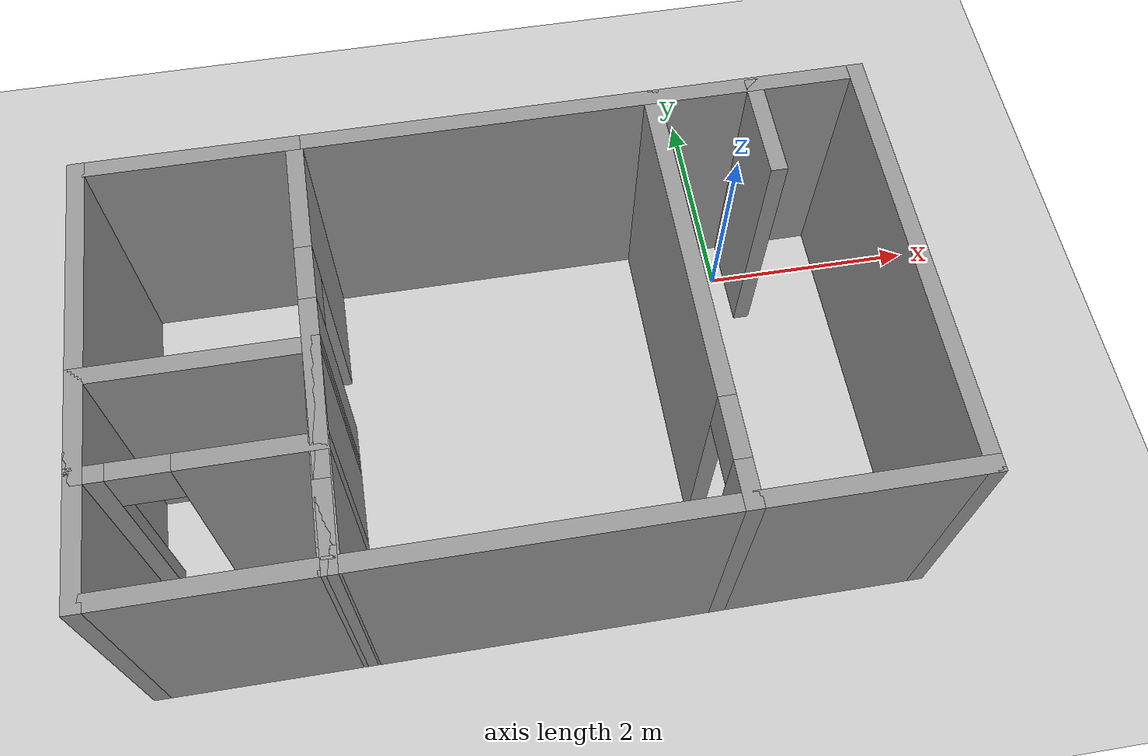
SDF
<sdf version="1.7">
 <world name="default">
  <light name="sun" type="directional">
   <pose>0 0 10 0 -0 0</pose>
   <diffuse>0.8 0.8 0.8 1</diffuse>
   <specular>0.2 0.2 0.2 1</specular>
   <attenuation>
    <range>1000</range>
    <constant>0.9</constant>
    <linear>0.01</linear>
    <quadratic>0.001</quadratic>
   </attenuation>
   <direction>-0.5 0.1 -0.9</direction>
   <spot><inner_angle>0</inner_angle><outer_angle>0</outer_angle><falloff>0</falloff></spot>
  </light>
  <model name="ground_plane">
   <static>1</static>
   <link name="link">
    <collision name="collision">
     <geometry><plane><normal>0 0 1</normal><size>100 100</size></plane></geometry>
     <surface><friction><ode><mu>100</mu><mu2>50</mu2></ode></friction></surface>
    </collision>
    <visual name="visual">
     <cast_shadows>0</cast_shadows>
     <geometry><plane><normal>0 0 1</normal><size>100 100</size></plane></geometry>
     <material>
      <script><uri>file://media/materials/scripts/gazebo.material</uri><name>Gazebo/Grey</name></script>
     </material>
    </visual>
   </link>
  </model>
  <gravity>0 0 -9.8</gravity>
  <magnetic_field>6e-06 2.3e-05 -4.2e-05</magnetic_field>
  <atmosphere type="adiabatic"/>
  <physics type="ode">
   <max_step_size>0.001</max_step_size>
   <real_time_factor>1</real_time_factor>
   <real_time_update_rate>1000</real_time_update_rate>
  </physics>
  <scene><ambient>0.4 0.4 0.4 1</ambient><background>0.7 0.7 0.7 1</background><shadows>1</shadows></scene>
  <spherical_coordinates>
   <surface_model>EARTH_WGS84</surface_model>
   <latitude_deg>0</latitude_deg>
   <longitude_deg>0</longitude_deg>
   <elevation>0</elevation>
   <heading_deg>0</heading_deg>
  </spherical_coordinates>
  <model name="Simulation_room">
   <pose>-2.29917 -1.44617 0 0 -0 0</pose>
   <link name="Wall_0">
    <collision name="Wall_0_Collision">
     <geometry><box><size>4 0.15 2.5</size></box></geometry>
     <pose>0 0 1.25 0 -0 0</pose>
    </collision>
    <visual name="Wall_0_Visual">
     <pose>0 0 1.25 0 -0 0</pose>
     <geometry><box><size>4 0.15 2.5</size></box></geometry>
     <material>
      <script><uri>file://media/materials/scripts/gazebo.material</uri><name>Gazebo/Grey</name></script>
      <ambient>1 1 1 1</ambient>
     </material>
     <meta><layer>0</layer></meta>
    </visual>
    <pose>-3.425 0.000487 0 0 -0 -1.5708</pose>
   </link>
   <link name="Wall_1">
    <collision name="Wall_1_Collision">
     <geometry><box><size>7 0.15 2.5</size></box></geometry>
     <pose>0 0 1.25 0 -0 0</pose>
    </collision>
    <visual name="Wall_1_Visual">
     <pose>0 0 1.25 0 -0 0</pose>
     <geometry><box><size>7 0.15 2.5</size></box></geometry>
     <material>
      <script><uri>file://media/materials/scripts/gazebo.material</uri><name>Gazebo/Grey</name></script>
      <ambient>1 1 1 1</ambient>
     </material>
     <meta><layer>0</layer></meta>
    </visual>
    <pose>0 -1.92451 0 0 -0 0</pose>
   </link>
   <link name="Wall_12">
    <pose>1.56317 0.000487 0 0 -0 -1.5708</pose>
    <visual name="Wall_12_Visual_0">
     <pose>-0.477846 0 1.25 0 -0 0</pose>
     <geometry><box><size>3.04431 0.15 2.5</size></box></geometry>
     <material>
      <script><uri>file://media/materials/scripts/gazebo.material</uri><name>Gazebo/Grey</name></script>
      <ambient>1 1 1 1</ambient>
     </material>
     <meta><layer>0</layer></meta>
    </visual>
    <collision name="Wall_12_Collision_0">
     <geometry><box><size>3.04431 0.15 2.5</size></box></geometry>
     <pose>-0.477846 0 1.25 0 -0 0</pose>
    </collision>
    <visual name="Wall_12_Visual_1">
     <pose>1.79113 0 1.25 0 -0 0</pose>
     <geometry><box><size>0.417737 0.15 2.5</size></box></geometry>
     <material>
      <script><uri>file://media/materials/scripts/gazebo.material</uri><name>Gazebo/Grey</name></script>
      <ambient>1 1 1 1</ambient>
     </material>
     <meta><layer>0</layer></meta>
    </visual>
    <collision name="Wall_12_Collision_1">
     <geometry><box><size>0.417737 0.15 2.5</size></box></geometry>
     <pose>1.79113 0 1.25 0 -0 0</pose>
    </collision>
    <visual name="Wall_12_Visual_2">
     <pose>1.31329 0 2.25 0 -0 0</pose>
     <geometry><box><size>0.537956 0.15 0.5</size></box></geometry>
     <material>
      <script><uri>file://media/materials/scripts/gazebo.material</uri><name>Gazebo/Grey</name></script>
      <ambient>1 1 1 1</ambient>
     </material>
     <meta><layer>0</layer></meta>
    </visual>
    <collision name="Wall_12_Collision_2">
     <geometry><box><size>0.537956 0.15 0.5</size></box></geometry>
     <pose>1.31329 0 2.25 0 -0 0</pose>
    </collision>
   </link>
   <link name="Wall_15">
    <collision name="Wall_15_Collision">
     <geometry><box><size>1 0.15 2.5</size></box></geometry>
     <pose>0 0 1.25 0 -0 0</pose>
    </collision>
    <visual name="Wall_15_Visual">
     <pose>0 0 1.25 0 -0 0</pose>
     <geometry><box><size>1 0.15 2.5</size></box></geometry>
     <material>
      <script><uri>file://media/materials/scripts/gazebo.material</uri><name>Gazebo/Grey</name></script>
      <ambient>1 1 1 1</ambient>
     </material>
     <meta><layer>0</layer></meta>
    </visual>
    <pose>2.48839 1.48037 0 0 -0 -1.5708</pose>
   </link>
   <link name="Wall_2">
    <collision name="Wall_2_Collision">
     <geometry><box><size>4 0.15 2.5</size></box></geometry>
     <pose>0 0 1.25 0 -0 0</pose>
    </collision>
    <visual name="Wall_2_Visual">
     <pose>0 0 1.25 0 -0 0</pose>
     <geometry><box><size>4 0.15 2.5</size></box></geometry>
     <material>
      <script><uri>file://media/materials/scripts/gazebo.material</uri><name>Gazebo/Grey</name></script>
      <ambient>1 1 1 1</ambient>
     </material>
     <meta><layer>0</layer></meta>
    </visual>
    <pose>3.425 0.000487 0 0 -0 1.5708</pose>
   </link>
   <link name="Wall_3">
    <collision name="Wall_3_Collision">
     <geometry><box><size>7 0.15 2.5</size></box></geometry>
     <pose>0 0 1.25 0 -0 0</pose>
    </collision>
    <visual name="Wall_3_Visual">
     <pose>0 0 1.25 0 -0 0</pose>
     <geometry><box><size>7 0.15 2.5</size></box></geometry>
     <material>
      <script><uri>file://media/materials/scripts/gazebo.material</uri><name>Gazebo/Grey</name></script>
      <ambient>1 1 1 1</ambient>
     </material>
     <meta><layer>0</layer></meta>
    </visual>
    <pose>0 1.92549 0 0 -0 3.14159</pose>
   </link>
   <link name="Wall_4">
    <collision name="Wall_4_Collision">
     <geometry><box><size>1.97989 0.15 2.5</size></box></geometry>
     <pose>0 0 1.25 0 -0 0</pose>
    </collision>
    <visual name="Wall_4_Visual">
     <pose>0 0 1.25 0 -0 0</pose>
     <geometry><box><size>1.97989 0.15 2.5</size></box></geometry>
     <material>
      <script><uri>file://media/materials/scripts/gazebo.material</uri><name>Gazebo/Grey</name></script>
      <ambient>1 1 1 1</ambient>
     </material>
     <meta><layer>0</layer></meta>
    </visual>
    <pose>-2.51006 1.92549 0 0 -0 0</pose>
   </link>
   <link name="Wall_5">
    <pose>-1.575 0.000487 0 0 -0 -1.5708</pose>
    <visual name="Wall_5_Visual_0">
     <pose>-1.42318 0 1.25 0 -0 0</pose>
     <geometry><box><size>1.15363 0.15 2.5</size></box></geometry>
     <material>
      <script><uri>file://media/materials/scripts/gazebo.material</uri><name>Gazebo/Grey</name></script>
      <ambient>1 1 1 1</ambient>
     </material>
     <meta><layer>0</layer></meta>
    </visual>
    <collision name="Wall_5_Collision_0">
     <geometry><box><size>1.15363 0.15 2.5</size></box></geometry>
     <pose>-1.42318 0 1.25 0 -0 0</pose>
    </collision>
    <visual name="Wall_5_Visual_1">
     <pose>0.82568 0 1.25 0 -0 0</pose>
     <geometry><box><size>2.34864 0.15 2.5</size></box></geometry>
     <material>
      <script><uri>file://media/materials/scripts/gazebo.material</uri><name>Gazebo/Grey</name></script>
      <ambient>1 1 1 1</ambient>
     </material>
     <meta><layer>0</layer></meta>
    </visual>
    <collision name="Wall_5_Collision_1">
     <geometry><box><size>2.34864 0.15 2.5</size></box></geometry>
     <pose>0.82568 0 1.25 0 -0 0</pose>
    </collision>
    <visual name="Wall_5_Visual_2">
     <pose>-0.597504 0 2.25 0 -0 0</pose>
     <geometry><box><size>0.497729 0.15 0.5</size></box></geometry>
     <material>
      <script><uri>file://media/materials/scripts/gazebo.material</uri><name>Gazebo/Grey</name></script>
      <ambient>1 1 1 1</ambient>
     </material>
     <meta><layer>0</layer></meta>
    </visual>
    <collision name="Wall_5_Collision_2">
     <geometry><box><size>0.497729 0.15 0.5</size></box></geometry>
     <pose>-0.597504 0 2.25 0 -0 0</pose>
    </collision>
   </link>
   <link name="Wall_6">
    <pose>-1.58506 -0.999513 0 0 -0 1.55993</pose>
    <visual name="Wall_6_Visual_0">
     <pose>-0.886795 0 1.25 0 -0 0</pose>
     <geometry><box><size>0.226847 0.15 2.5</size></box></geometry>
     <material>
      <script><uri>file://media/materials/scripts/gazebo.material</uri><name>Gazebo/Grey</name></script>
      <ambient>1 1 1 1</ambient>
     </material>
     <meta><layer>0</layer></meta>
    </visual>
    <collision name="Wall_6_Collision_0">
     <geometry><box><size>0.226847 0.15 2.5</size></box></geometry>
     <pose>-0.886795 0 1.25 0 -0 0</pose>
    </collision>
    <visual name="Wall_6_Visual_1">
     <pose>0.382401 0 1.25 0 -0 0</pose>
     <geometry><box><size>1.23564 0.15 2.5</size></box></geometry>
     <material>
      <script><uri>file://media/materials/scripts/gazebo.material</uri><name>Gazebo/Grey</name></script>
      <ambient>1 1 1 1</ambient>
     </material>
     <meta><layer>0</layer></meta>
    </visual>
    <collision name="Wall_6_Collision_1">
     <geometry><box><size>1.23564 0.15 2.5</size></box></geometry>
     <pose>0.382401 0 1.25 0 -0 0</pose>
    </collision>
    <visual name="Wall_6_Visual_2">
     <pose>-0.504394 0 2.25 0 -0 0</pose>
     <geometry><box><size>0.537956 0.15 0.5</size></box></geometry>
     <material>
      <script><uri>file://media/materials/scripts/gazebo.material</uri><name>Gazebo/Grey</name></script>
      <ambient>1 1 1 1</ambient>
     </material>
     <meta><layer>0</layer></meta>
    </visual>
    <collision name="Wall_6_Collision_2">
     <geometry><box><size>0.537956 0.15 0.5</size></box></geometry>
     <pose>-0.504394 0 2.25 0 -0 0</pose>
    </collision>
   </link>
   <link name="Wall_7">
    <collision name="Wall_7_Collision">
     <geometry><box><size>2 0.15 2.5</size></box></geometry>
     <pose>0 0 1.25 0 -0 0</pose>
    </collision>
    <visual name="Wall_7_Visual">
     <pose>0 0 1.25 0 -0 0</pose>
     <geometry><box><size>2 0.15 2.5</size></box></geometry>
     <material>
      <script><uri>file://media/materials/scripts/gazebo.material</uri><name>Gazebo/Grey</name></script>
      <ambient>1 1 1 1</ambient>
     </material>
     <meta><layer>0</layer></meta>
    </visual>
    <pose>-2.5 -0.074513 0 0 -0 3.14159</pose>
   </link>
   <link name="Wall_8">
    <collision name="Wall_8_Collision">
     <geometry><box><size>1 0.15 2.5</size></box></geometry>
     <pose>0 0 1.25 0 -0 0</pose>
    </collision>
    <visual name="Wall_8_Visual">
     <pose>0 0 1.25 0 -0 0</pose>
     <geometry><box><size>1 0.15 2.5</size></box></geometry>
     <material>
      <script><uri>file://media/materials/scripts/gazebo.material</uri><name>Gazebo/Grey</name></script>
      <ambient>1 1 1 1</ambient>
     </material>
     <meta><layer>0</layer></meta>
    </visual>
    <pose>-3.425 -0.499513 0 0 -0 -1.5708</pose>
   </link>
   <link name="Wall_9">
    <pose>-2.5 -0.924513 0 0 -0 0</pose>
    <visual name="Wall_9_Visual_0">
     <pose>-0.845569 0 1.25 0 -0 0</pose>
     <geometry><box><size>0.308862 0.15 2.5</size></box></geometry>
     <material>
      <script><uri>file://media/materials/scripts/gazebo.material</uri><name>Gazebo/Grey</name></script>
      <ambient>1 1 1 1</ambient>
     </material>
     <meta><layer>0</layer></meta>
    </visual>
    <collision name="Wall_9_Collision_0">
     <geometry><box><size>0.308862 0.15 2.5</size></box></geometry>
     <pose>-0.845569 0 1.25 0 -0 0</pose>
    </collision>
    <visual name="Wall_9_Visual_1">
     <pose>0.403295 0 1.25 0 -0 0</pose>
     <geometry><box><size>1.19341 0.15 2.5</size></box></geometry>
     <material>
      <script><uri>file://media/materials/scripts/gazebo.material</uri><name>Gazebo/Grey</name></script>
      <ambient>1 1 1 1</ambient>
     </material>
     <meta><layer>0</layer></meta>
    </visual>
    <collision name="Wall_9_Collision_1">
     <geometry><box><size>1.19341 0.15 2.5</size></box></geometry>
     <pose>0.403295 0 1.25 0 -0 0</pose>
    </collision>
    <visual name="Wall_9_Visual_2">
     <pose>-0.442274 0 2.25 0 -0 0</pose>
     <geometry><box><size>0.497729 0.15 0.5</size></box></geometry>
     <material>
      <script><uri>file://media/materials/scripts/gazebo.material</uri><name>Gazebo/Grey</name></script>
      <ambient>1 1 1 1</ambient>
     </material>
     <meta><layer>0</layer></meta>
    </visual>
    <collision name="Wall_9_Collision_2">
     <geometry><box><size>0.497729 0.15 0.5</size></box></geometry>
     <pose>-0.442274 0 2.25 0 -0 0</pose>
    </collision>
   </link>
   <static>1</static>
  </model>
  <model name="Simulation_room_0">
   <pose>-2.29917 -1.44617 0 0 -0 0</pose>
   <link name="Wall_0">
    <collision name="Wall_0_Collision">
     <geometry><box><size>4 0.15 2.5</size></box></geometry>
     <pose>0 0 1.25 0 -0 0</pose>
    </collision>
    <visual name="Wall_0_Visual">
     <pose>0 0 1.25 0 -0 0</pose>
     <geometry><box><size>4 0.15 2.5</size></box></geometry>
     <material>
      <script><uri>file://media/materials/scripts/gazebo.material</uri><name>Gazebo/Grey</name></script>
      <ambient>1 1 1 1</ambient>
     </material>
     <meta><layer>0</layer></meta>
    </visual>
    <pose>-3.425 0.000487 0 0 -0 -1.5708</pose>
   </link>
   <link name="Wall_1">
    <collision name="Wall_1_Collision">
     <geometry><box><size>7 0.15 2.5</size></box></geometry>
     <pose>0 0 1.25 0 -0 0</pose>
    </collision>
    <visual name="Wall_1_Visual">
     <pose>0 0 1.25 0 -0 0</pose>
     <geometry><box><size>7 0.15 2.5</size></box></geometry>
     <material>
      <script><uri>file://media/materials/scripts/gazebo.material</uri><name>Gazebo/Grey</name></script>
      <ambient>1 1 1 1</ambient>
     </material>
     <meta><layer>0</layer></meta>
    </visual>
    <pose>0 -1.92451 0 0 -0 0</pose>
   </link>
   <link name="Wall_12">
    <pose>1.56317 0.000487 0 0 -0 -1.5708</pose>
    <visual name="Wall_12_Visual_0">
     <pose>-0.477846 0 1.25 0 -0 0</pose>
     <geometry><box><size>3.04431 0.15 2.5</size></box></geometry>
     <material>
      <script><uri>file://media/materials/scripts/gazebo.material</uri><name>Gazebo/Grey</name></script>
      <ambient>1 1 1 1</ambient>
     </material>
     <meta><layer>0</layer></meta>
    </visual>
    <collision name="Wall_12_Collision_0">
     <geometry><box><size>3.04431 0.15 2.5</size></box></geometry>
     <pose>-0.477846 0 1.25 0 -0 0</pose>
    </collision>
    <visual name="Wall_12_Visual_1">
     <pose>1.79113 0 1.25 0 -0 0</pose>
     <geometry><box><size>0.417737 0.15 2.5</size></box></geometry>
     <material>
      <script><uri>file://media/materials/scripts/gazebo.material</uri><name>Gazebo/Grey</name></script>
      <ambient>1 1 1 1</ambient>
     </material>
     <meta><layer>0</layer></meta>
    </visual>
    <collision name="Wall_12_Collision_1">
     <geometry><box><size>0.417737 0.15 2.5</size></box></geometry>
     <pose>1.79113 0 1.25 0 -0 0</pose>
    </collision>
    <visual name="Wall_12_Visual_2">
     <pose>1.31329 0 2.25 0 -0 0</pose>
     <geometry><box><size>0.537956 0.15 0.5</size></box></geometry>
     <material>
      <script><uri>file://media/materials/scripts/gazebo.material</uri><name>Gazebo/Grey</name></script>
      <ambient>1 1 1 1</ambient>
     </material>
     <meta><layer>0</layer></meta>
    </visual>
    <collision name="Wall_12_Collision_2">
     <geometry><box><size>0.537956 0.15 0.5</size></box></geometry>
     <pose>1.31329 0 2.25 0 -0 0</pose>
    </collision>
   </link>
   <link name="Wall_15">
    <collision name="Wall_15_Collision">
     <geometry><box><size>1 0.15 2.5</size></box></geometry>
     <pose>0 0 1.25 0 -0 0</pose>
    </collision>
    <visual name="Wall_15_Visual">
     <pose>0 0 1.25 0 -0 0</pose>
     <geometry><box><size>1 0.15 2.5</size></box></geometry>
     <material>
      <script><uri>file://media/materials/scripts/gazebo.material</uri><name>Gazebo/Grey</name></script>
      <ambient>1 1 1 1</ambient>
     </material>
     <meta><layer>0</layer></meta>
    </visual>
    <pose>2.48839 1.48037 0 0 -0 -1.5708</pose>
   </link>
   <link name="Wall_2">
    <collision name="Wall_2_Collision">
     <geometry><box><size>4 0.15 2.5</size></box></geometry>
     <pose>0 0 1.25 0 -0 0</pose>
    </collision>
    <visual name="Wall_2_Visual">
     <pose>0 0 1.25 0 -0 0</pose>
     <geometry><box><size>4 0.15 2.5</size></box></geometry>
     <material>
      <script><uri>file://media/materials/scripts/gazebo.material</uri><name>Gazebo/Grey</name></script>
      <ambient>1 1 1 1</ambient>
     </material>
     <meta><layer>0</layer></meta>
    </visual>
    <pose>3.425 0.000487 0 0 -0 1.5708</pose>
   </link>
   <link name="Wall_3">
    <collision name="Wall_3_Collision">
     <geometry><box><size>7 0.15 2.5</size></box></geometry>
     <pose>0 0 1.25 0 -0 0</pose>
    </collision>
    <visual name="Wall_3_Visual">
     <pose>0 0 1.25 0 -0 0</pose>
     <geometry><box><size>7 0.15 2.5</size></box></geometry>
     <material>
      <script><uri>file://media/materials/scripts/gazebo.material</uri><name>Gazebo/Grey</name></script>
      <ambient>1 1 1 1</ambient>
     </material>
     <meta><layer>0</layer></meta>
    </visual>
    <pose>0 1.92549 0 0 -0 3.14159</pose>
   </link>
   <link name="Wall_4">
    <collision name="Wall_4_Collision">
     <geometry><box><size>1.97989 0.15 2.5</size></box></geometry>
     <pose>0 0 1.25 0 -0 0</pose>
    </collision>
    <visual name="Wall_4_Visual">
     <pose>0 0 1.25 0 -0 0</pose>
     <geometry><box><size>1.97989 0.15 2.5</size></box></geometry>
     <material>
      <script><uri>file://media/materials/scripts/gazebo.material</uri><name>Gazebo/Grey</name></script>
      <ambient>1 1 1 1</ambient>
     </material>
     <meta><layer>0</layer></meta>
    </visual>
    <pose>-2.51006 1.92549 0 0 -0 0</pose>
   </link>
   <link name="Wall_5">
    <pose>-1.575 0.000487 0 0 -0 -1.5708</pose>
    <visual name="Wall_5_Visual_0">
     <pose>-1.42318 0 1.25 0 -0 0</pose>
     <geometry><box><size>1.15363 0.15 2.5</size></box></geometry>
     <material>
      <script><uri>file://media/materials/scripts/gazebo.material</uri><name>Gazebo/Grey</name></script>
      <ambient>1 1 1 1</ambient>
     </material>
     <meta><layer>0</layer></meta>
    </visual>
    <collision name="Wall_5_Collision_0">
     <geometry><box><size>1.15363 0.15 2.5</size></box></geometry>
     <pose>-1.42318 0 1.25 0 -0 0</pose>
    </collision>
    <visual name="Wall_5_Visual_1">
     <pose>0.82568 0 1.25 0 -0 0</pose>
     <geometry><box><size>2.34864 0.15 2.5</size></box></geometry>
     <material>
      <script><uri>file://media/materials/scripts/gazebo.material</uri><name>Gazebo/Grey</name></script>
      <ambient>1 1 1 1</ambient>
     </material>
     <meta><layer>0</layer></meta>
    </visual>
    <collision name="Wall_5_Collision_1">
     <geometry><box><size>2.34864 0.15 2.5</size></box></geometry>
     <pose>0.82568 0 1.25 0 -0 0</pose>
    </collision>
    <visual name="Wall_5_Visual_2">
     <pose>-0.597504 0 2.25 0 -0 0</pose>
     <geometry><box><size>0.497729 0.15 0.5</size></box></geometry>
     <material>
      <script><uri>file://media/materials/scripts/gazebo.material</uri><name>Gazebo/Grey</name></script>
      <ambient>1 1 1 1</ambient>
     </material>
     <meta><layer>0</layer></meta>
    </visual>
    <collision name="Wall_5_Collision_2">
     <geometry><box><size>0.497729 0.15 0.5</size></box></geometry>
     <pose>-0.597504 0 2.25 0 -0 0</pose>
    </collision>
   </link>
   <link name="Wall_6">
    <pose>-1.58506 -0.999513 0 0 -0 1.55993</pose>
    <visual name="Wall_6_Visual_0">
     <pose>-0.886795 0 1.25 0 -0 0</pose>
     <geometry><box><size>0.226847 0.15 2.5</size></box></geometry>
     <material>
      <script><uri>file://media/materials/scripts/gazebo.material</uri><name>Gazebo/Grey</name></script>
      <ambient>1 1 1 1</ambient>
     </material>
     <meta><layer>0</layer></meta>
    </visual>
    <collision name="Wall_6_Collision_0">
     <geometry><box><size>0.226847 0.15 2.5</size></box></geometry>
     <pose>-0.886795 0 1.25 0 -0 0</pose>
    </collision>
    <visual name="Wall_6_Visual_1">
     <pose>0.382401 0 1.25 0 -0 0</pose>
     <geometry><box><size>1.23564 0.15 2.5</size></box></geometry>
     <material>
      <script><uri>file://media/materials/scripts/gazebo.material</uri><name>Gazebo/Grey</name></script>
      <ambient>1 1 1 1</ambient>
     </material>
     <meta><layer>0</layer></meta>
    </visual>
    <collision name="Wall_6_Collision_1">
     <geometry><box><size>1.23564 0.15 2.5</size></box></geometry>
     <pose>0.382401 0 1.25 0 -0 0</pose>
    </collision>
    <visual name="Wall_6_Visual_2">
     <pose>-0.504394 0 2.25 0 -0 0</pose>
     <geometry><box><size>0.537956 0.15 0.5</size></box></geometry>
     <material>
      <script><uri>file://media/materials/scripts/gazebo.material</uri><name>Gazebo/Grey</name></script>
      <ambient>1 1 1 1</ambient>
     </material>
     <meta><layer>0</layer></meta>
    </visual>
    <collision name="Wall_6_Collision_2">
     <geometry><box><size>0.537956 0.15 0.5</size></box></geometry>
     <pose>-0.504394 0 2.25 0 -0 0</pose>
    </collision>
   </link>
   <link name="Wall_7">
    <collision name="Wall_7_Collision">
     <geometry><box><size>2 0.15 2.5</size></box></geometry>
     <pose>0 0 1.25 0 -0 0</pose>
    </collision>
    <visual name="Wall_7_Visual">
     <pose>0 0 1.25 0 -0 0</pose>
     <geometry><box><size>2 0.15 2.5</size></box></geometry>
     <material>
      <script><uri>file://media/materials/scripts/gazebo.material</uri><name>Gazebo/Grey</name></script>
      <ambient>1 1 1 1</ambient>
     </material>
     <meta><layer>0</layer></meta>
    </visual>
    <pose>-2.5 -0.074513 0 0 -0 3.14159</pose>
   </link>
   <link name="Wall_8">
    <collision name="Wall_8_Collision">
     <geometry><box><size>1 0.15 2.5</size></box></geometry>
     <pose>0 0 1.25 0 -0 0</pose>
    </collision>
    <visual name="Wall_8_Visual">
     <pose>0 0 1.25 0 -0 0</pose>
     <geometry><box><size>1 0.15 2.5</size></box></geometry>
     <material>
      <script><uri>file://media/materials/scripts/gazebo.material</uri><name>Gazebo/Grey</name></script>
      <ambient>1 1 1 1</ambient>
     </material>
     <meta><layer>0</layer></meta>
    </visual>
    <pose>-3.425 -0.499513 0 0 -0 -1.5708</pose>
   </link>
   <link name="Wall_9">
    <pose>-2.5 -0.924513 0 0 -0 0</pose>
    <visual name="Wall_9_Visual_0">
     <pose>-0.845569 0 1.25 0 -0 0</pose>
     <geometry><box><size>0.308862 0.15 2.5</size></box></geometry>
     <material>
      <script><uri>file://media/materials/scripts/gazebo.material</uri><name>Gazebo/Grey</name></script>
      <ambient>1 1 1 1</ambient>
     </material>
     <meta><layer>0</layer></meta>
    </visual>
    <collision name="Wall_9_Collision_0">
     <geometry><box><size>0.308862 0.15 2.5</size></box></geometry>
     <pose>-0.845569 0 1.25 0 -0 0</pose>
    </collision>
    <visual name="Wall_9_Visual_1">
     <pose>0.403295 0 1.25 0 -0 0</pose>
     <geometry><box><size>1.19341 0.15 2.5</size></box></geometry>
     <material>
      <script><uri>file://media/materials/scripts/gazebo.material</uri><name>Gazebo/Grey</name></script>
      <ambient>1 1 1 1</ambient>
     </material>
     <meta><layer>0</layer></meta>
    </visual>
    <collision name="Wall_9_Collision_1">
     <geometry><box><size>1.19341 0.15 2.5</size></box></geometry>
     <pose>0.403295 0 1.25 0 -0 0</pose>
    </collision>
    <visual name="Wall_9_Visual_2">
     <pose>-0.442274 0 2.25 0 -0 0</pose>
     <geometry><box><size>0.497729 0.15 0.5</size></box></geometry>
     <material>
      <script><uri>file://media/materials/scripts/gazebo.material</uri><name>Gazebo/Grey</name></script>
      <ambient>1 1 1 1</ambient>
     </material>
     <meta><layer>0</layer></meta>
    </visual>
    <collision name="Wall_9_Collision_2">
     <geometry><box><size>0.497729 0.15 0.5</size></box></geometry>
     <pose>-0.442274 0 2.25 0 -0 0</pose>
    </collision>
   </link>
   <static>1</static>
  </model>
 </world>
</sdf>
